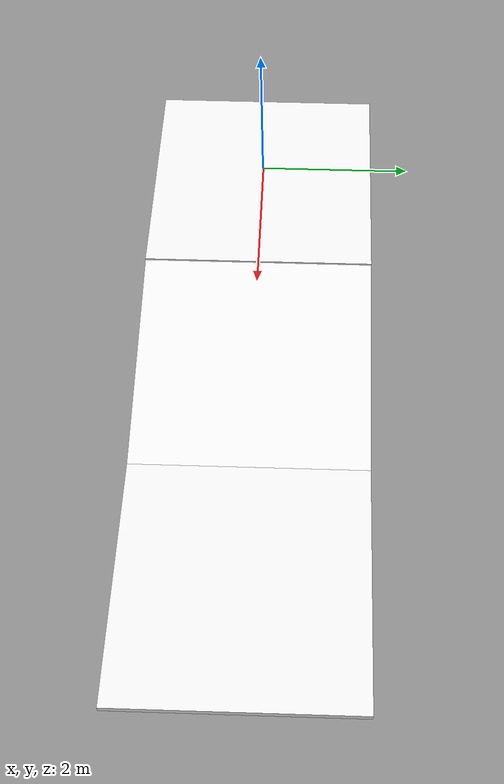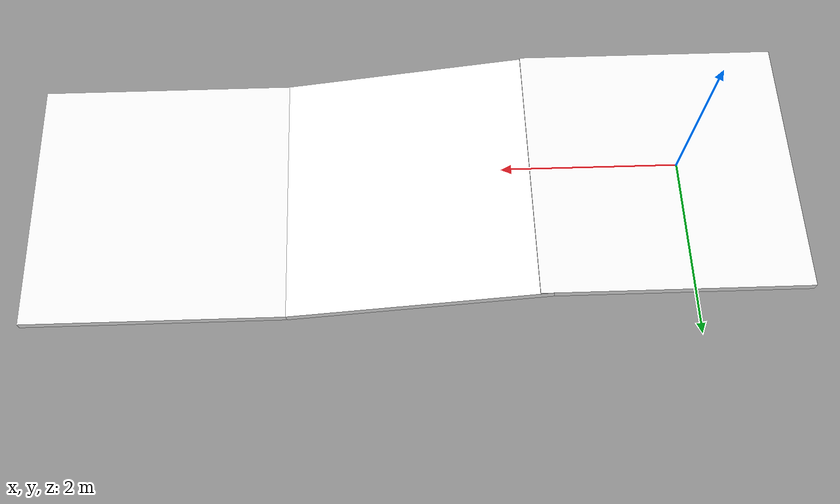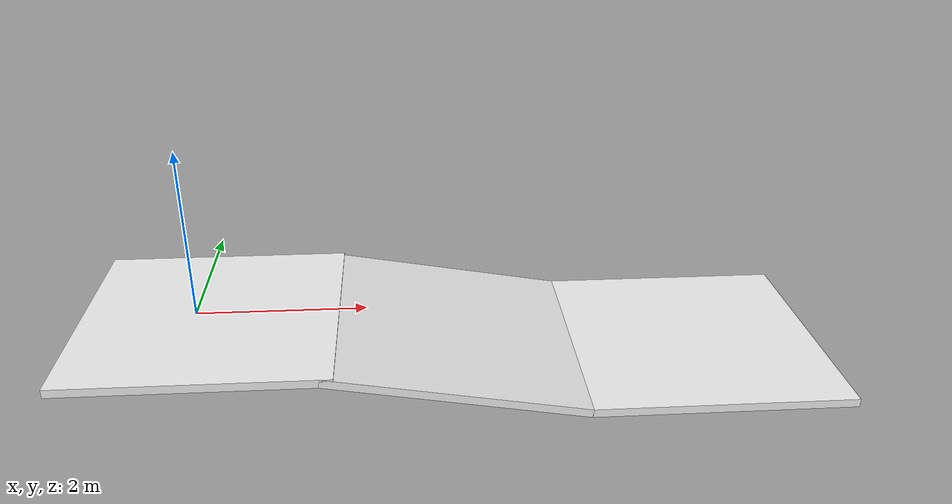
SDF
<sdf version="1.7">
  <world name="default">

    <!-- Need to be able to manipulate model state -->
    <plugin name="gazebo_ros_state" filename="libgazebo_ros_state.so">
      <ros>
        <namespace>/gazebo</namespace>
      </ros>

      <update_rate>1.0</update_rate>
    </plugin>

    <!-- Need to be able to manipulate model configuration -->
    <plugin name="gazebo_ros_properties" filename="libgazebo_ros_properties.so">
      <ros>
        <namespace>/gazebo</namespace>
      </ros>

      <update_rate>1.0</update_rate>
    </plugin>

    <physics type="ode">
    <max_step_size>0.001</max_step_size>
    <real_time_factor>1.0</real_time_factor>
    <real_time_update_rate>1000</real_time_update_rate>
    <gravity>0 0 -9.81</gravity>
        <ode>
            <solver>
            <type>quick</type>
            <iters>50</iters>
            <sor>1.3</sor>
            </solver>
            <constraints>
            <cfm>0.0</cfm>
            <erp>0.2</erp>
            <contact_max_correcting_vel>10.0</contact_max_correcting_vel>
            <contact_surface_layer>0.001</contact_surface_layer>
            </constraints>
        </ode>
    </physics>

    <!-- A global light source -->
    <include>
        <uri>model://sun</uri>
    </include>
    <!-- A ground plane -->

    <model name="static_environment">
  <static>true</static>
  <link name="region_0">
    <pose>0.175 0.0 -0.05 0.0 0.0 0.0</pose>
    <collision name="region_0_collision">
      <geometry>
        <box>
          <size>3.0 3.0 0.1</size>
        </box>
      </geometry>
      <surface>
        <friction>
          <ode>
            <mu>1.0</mu>
            <mu2>1.0</mu2>
          </ode>
        </friction>
      </surface>
    </collision>
    <visual name="region_0_visual">
      <geometry>
        <box>
          <size>3.0 3.0 0.1</size>
        </box>
      </geometry>
      <material>
        <ambient>1.0 1.0 1.0 1.0</ambient>
        <diffuse>1.0 1.0 1.0 1.0</diffuse>
      </material>
    </visual>
  </link>
  <link name="region_1">
    <pose>3.0 0.0 -0.3111622063903939 0.0 0.175 0.0</pose>
    <collision name="region_1_collision">
      <geometry>
        <box>
          <size>3.0 3.0 0.1</size>
        </box>
      </geometry>
      <surface>
        <friction>
          <ode>
            <mu>1.0</mu>
            <mu2>1.0</mu2>
          </ode>
        </friction>
      </surface>
    </collision>
    <visual name="region_1_visual">
      <geometry>
        <box>
          <size>3.0 3.0 0.1</size>
        </box>
      </geometry>
      <material>
        <ambient>1.0 1.0 1.0 1.0</ambient>
        <diffuse>1.0 1.0 1.0 1.0</diffuse>
      </material>
    </visual>
  </link>
  <link name="region_2">
    <pose>5.9770898083574 0.0 -0.5723244127807878 0.0 0.0 0.0</pose>
    <collision name="region_2_collision">
      <geometry>
        <box>
          <size>3.0 3.0 0.1</size>
        </box>
      </geometry>
      <surface>
        <friction>
          <ode>
            <mu>1.0</mu>
            <mu2>1.0</mu2>
          </ode>
        </friction>
      </surface>
    </collision>
    <visual name="region_2_visual">
      <geometry>
        <box>
          <size>3.0 3.0 0.1</size>
        </box>
      </geometry>
      <material>
        <ambient>1.0 1.0 1.0 1.0</ambient>
        <diffuse>1.0 1.0 1.0 1.0</diffuse>
      </material>
    </visual>
  </link>
</model>
  </world>
</sdf>
